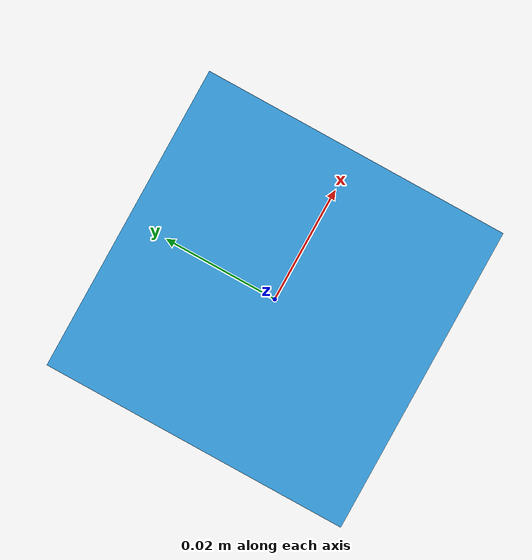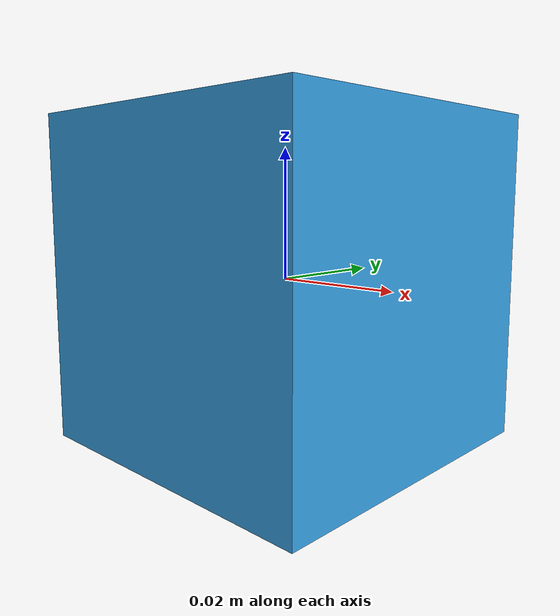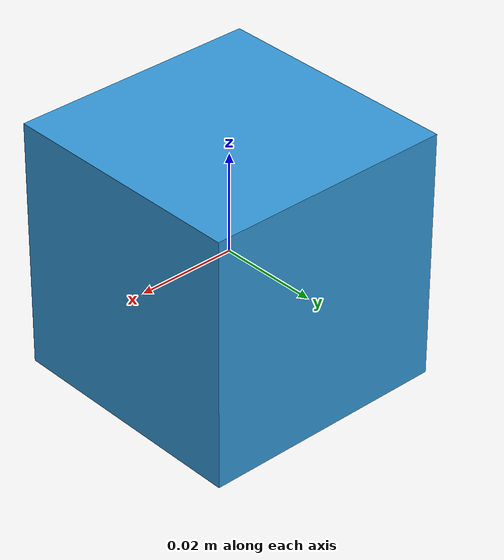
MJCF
<mujoco model="push_box">
  <compiler angle="radian" autolimits="true"/>

  <asset>
    <material name="box_mat" rgba="0.2 0.6 0.85 1" specular="0.4" shininess="0.2"/>
  </asset>

  <worldbody>
    <body name="box" pos="0 0 0">
      <freejoint name="box_joint"/>
      <geom name="box_geom" type="box" size="0.025 0.025 0.025"
            mass="0.1" material="box_mat" condim="6"
            friction="0.3 0.005 0.001"
            solimp="0.95 0.99 0.001" solref="0.02 1.0"/>
      <site name="box_center" pos="0 0 0" size="0.003" rgba="1 0 0 1"/>
    </body>
  </worldbody>
</mujoco>
